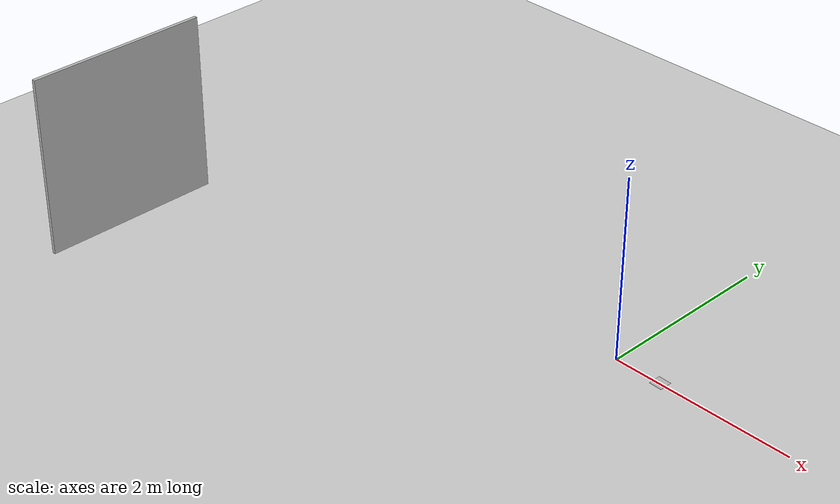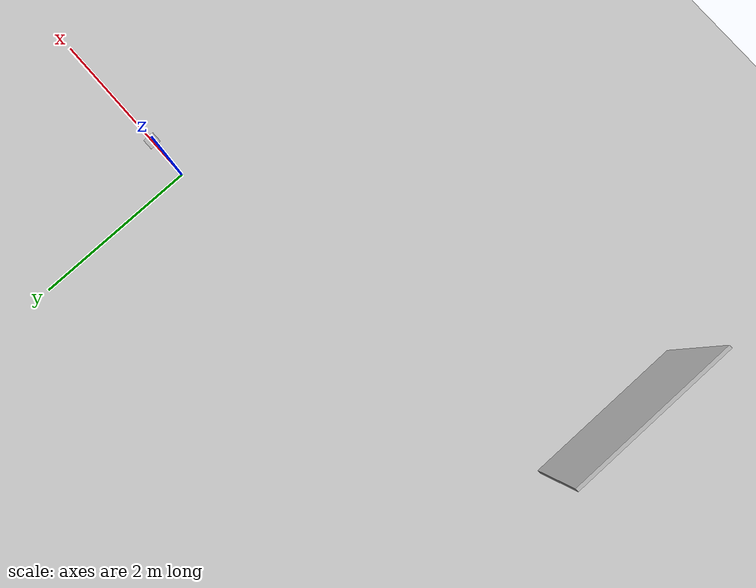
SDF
<sdf version="1.7">
 <world name="default">
  <light name="sun" type="directional">
   <pose>0 0 10 0 -0 0</pose>
   <diffuse>0.8 0.8 0.8 1</diffuse>
   <specular>0.2 0.2 0.2 1</specular>
   <attenuation>
    <range>1000</range>
    <constant>0.9</constant>
    <linear>0.01</linear>
    <quadratic>0.001</quadratic>
   </attenuation>
   <direction>-0.5 0.1 -0.9</direction>
   <spot><inner_angle>0</inner_angle><outer_angle>0</outer_angle><falloff>0</falloff></spot>
  </light>
  <model name="ground_plane">
   <static>1</static>
   <link name="link">
    <collision name="collision">
     <geometry><plane><normal>0 0 1</normal><size>100 100</size></plane></geometry>
     <surface><friction><ode><mu>100</mu><mu2>50</mu2></ode></friction></surface>
    </collision>
    <visual name="visual">
     <cast_shadows>0</cast_shadows>
     <geometry><plane><normal>0 0 1</normal><size>100 100</size></plane></geometry>
     <material>
      <script><uri>file://media/materials/scripts/gazebo.material</uri><name>Gazebo/Grey</name></script>
     </material>
    </visual>
   </link>
  </model>
  <gravity>0 0 -9.8</gravity>
  <magnetic_field>6e-06 2.3e-05 -4.2e-05</magnetic_field>
  <atmosphere type="adiabatic"/>
  <physics type="ode">
   <max_step_size>0.001</max_step_size>
   <real_time_factor>1</real_time_factor>
   <real_time_update_rate>1000</real_time_update_rate>
  </physics>
  <scene><ambient>0.4 0.4 0.4 1</ambient><background>0.7 0.7 0.7 1</background><shadows>1</shadows></scene>
  <audio><device>default</device></audio>
  <spherical_coordinates>
   <surface_model>EARTH_WGS84</surface_model>
   <latitude_deg>0</latitude_deg>
   <longitude_deg>0</longitude_deg>
   <elevation>0</elevation>
   <heading_deg>0</heading_deg>
  </spherical_coordinates>
  <model name="Marker10">
   <static>1</static>
   <link name="link">
    <visual name="visual">
     <geometry><mesh><uri>model://marker10/meshes/Marker10.dae</uri><scale>4 4 4</scale></mesh></geometry>
    </visual>
   </link>
   <pose>-5.1931 -1.76546 0 0 -0 0</pose>
  </model>
  <model name="Marker0_0">
   <static>1</static>
   <link name="link">
    <visual name="visual">
     <geometry><mesh><uri>model://marker0/meshes/Marker0.dae</uri><scale>0.28 0.28 0.28</scale></mesh></geometry>
    </visual>
   </link>
   <pose>0.6 -0 0.01 0 -1.54 0</pose>
  </model>
 </world>
</sdf>
